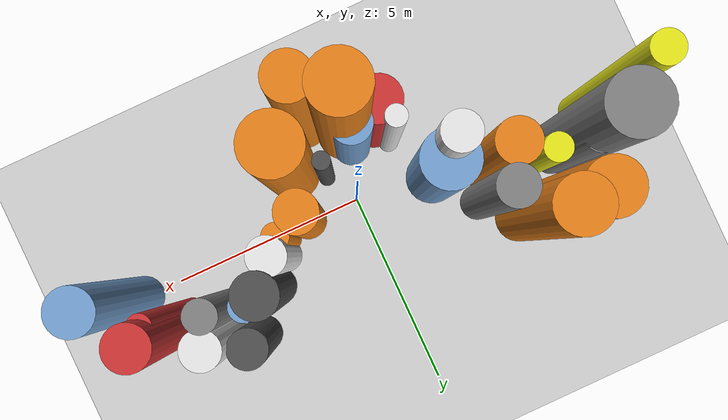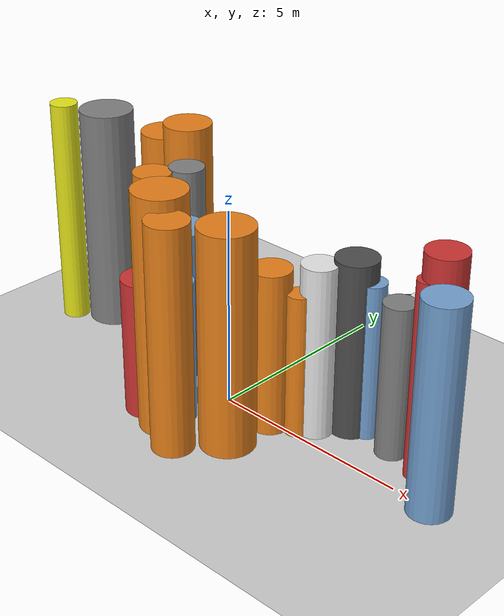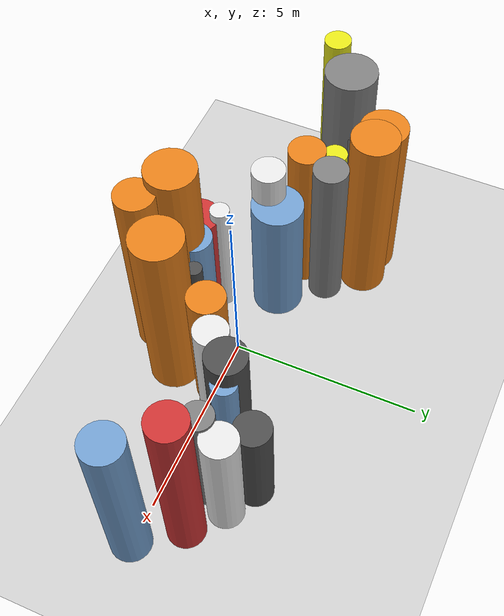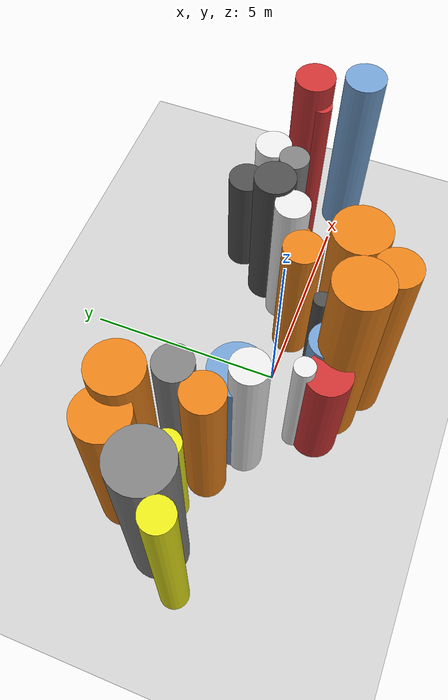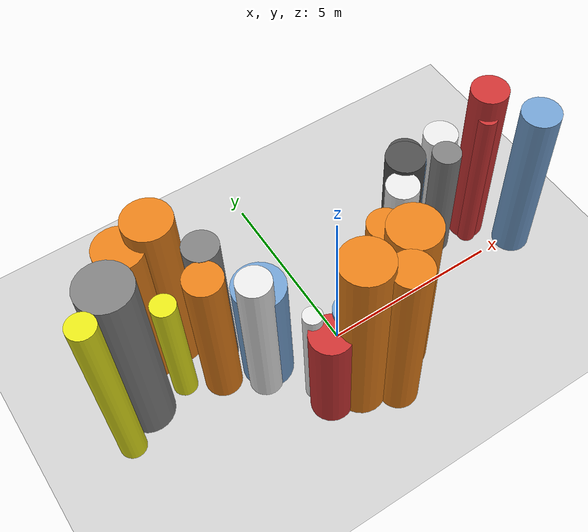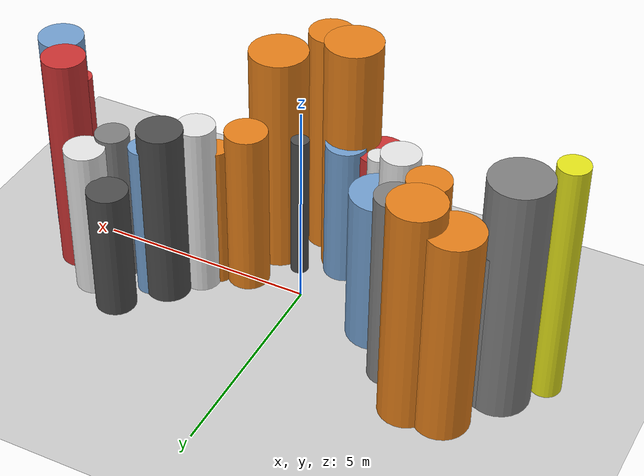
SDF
<?xml version='1.0'?>
<sdf version='1.6'>
  <world name='routeA_rl_v1__dense_recovery__rl_train__s_turn_multi_obstacle__000043'>
    <!-- Sun light -->
    <light name='sun' type='directional'>
      <cast_shadows>1</cast_shadows>
      <pose>0 0 10 0 0 0</pose>
      <diffuse>0.8 0.8 0.8 1</diffuse>
      <specular>0.2 0.2 0.2 1</specular>
      <attenuation>
        <range>1000</range>
        <constant>0.9</constant>
        <linear>0.01</linear>
        <quadratic>0.001</quadratic>
      </attenuation>
      <direction>-0.5 0.1 -0.9</direction>
    </light>

    <!-- Ground plane -->
    <model name='ground_plane'>
      <static>1</static>
      <link name='link'>
        <collision name='collision'>
          <geometry>
            <plane>
              <normal>0 0 1</normal>
              <size>100 100</size>
            </plane>
          </geometry>
          <surface>
            <contact>
              <collide_bitmask>65535</collide_bitmask>
              <ode/>
            </contact>
            <friction>
              <ode>
                <mu>100</mu>
                <mu2>50</mu2>
              </ode>
              <torsional><ode/></torsional>
            </friction>
            <bounce/>
          </surface>
          <max_contacts>10</max_contacts>
        </collision>
        <visual name='visual'>
          <cast_shadows>0</cast_shadows>
          <geometry>
            <plane>
              <normal>0 0 1</normal>
              <size>100 100</size>
            </plane>
          </geometry>
          <material>
            <script>
              <uri>file://media/materials/scripts/gazebo.material</uri>
              <n>Gazebo/Grey</n>
            </script>
          </material>
        </visual>
      </link>
    </model>

    <!-- Environment -->
    <magnetic_field>6e-06 2.3e-05 -4.2e-05</magnetic_field>
    <atmosphere type='adiabatic'/>
    <physics name='default_physics' default='0' type='ode'>
      <gravity>0 0 -9.8</gravity>
      <max_step_size>0.004</max_step_size>
      <real_time_factor>1</real_time_factor>
      <real_time_update_rate>250</real_time_update_rate>
    </physics>
    <scene>
      <ambient>0.4 0.4 0.4 1</ambient>
      <background>0.7 0.7 0.7 1</background>
      <shadows>1</shadows>
    </scene>
    <wind/>
    <spherical_coordinates>
      <surface_model>EARTH_WGS84</surface_model>
      <latitude_deg>0</latitude_deg>
      <longitude_deg>0</longitude_deg>
      <elevation>0</elevation>
      <heading_deg>0</heading_deg>
    </spherical_coordinates>

    <!-- ============ OBSTACLES (28) ============ -->
    <model name='s_turn_obs_0'>
      <static>1</static>
      <link name='link'>
        <visual name='visual'>
          <geometry>
            <cylinder>
              <radius>0.3445</radius>
              <length>5.9297</length>
            </cylinder>
          </geometry>
          <material>
            <script>
              <n>Gazebo/Yellow</n>
              <uri>file://media/materials/scripts/gazebo.material</uri>
            </script>
            <ambient>0.9 0.9 0.1 1</ambient>
          </material>
        </visual>
        <collision name='collision'>
          <geometry>
            <cylinder>
              <radius>0.3445</radius>
              <length>5.9297</length>
            </cylinder>
          </geometry>
          <max_contacts>10</max_contacts>
          <surface>
            <contact><ode/></contact>
            <bounce/>
            <friction>
              <ode><mu>1</mu><mu2>1</mu2></ode>
              <torsional><ode/></torsional>
            </friction>
          </surface>
        </collision>
      </link>
      <pose>-6.0000 0.2344 2.9648 0 0 0.0000</pose>
    </model>

    <model name='s_turn_obs_1'>
      <static>1</static>
      <link name='link'>
        <visual name='visual'>
          <geometry>
            <cylinder>
              <radius>0.6779</radius>
              <length>5.7943</length>
            </cylinder>
          </geometry>
          <material>
            <script>
              <n>Gazebo/Grey</n>
              <uri>file://media/materials/scripts/gazebo.material</uri>
            </script>
            <ambient>0.5 0.5 0.5 1</ambient>
          </material>
        </visual>
        <collision name='collision'>
          <geometry>
            <cylinder>
              <radius>0.6779</radius>
              <length>5.7943</length>
            </cylinder>
          </geometry>
          <max_contacts>10</max_contacts>
          <surface>
            <contact><ode/></contact>
            <bounce/>
            <friction>
              <ode><mu>1</mu><mu2>1</mu2></ode>
              <torsional><ode/></torsional>
            </friction>
          </surface>
        </collision>
      </link>
      <pose>-5.2000 0.9212 2.8972 0 0 0.0000</pose>
    </model>

    <model name='s_turn_obs_2'>
      <static>1</static>
      <link name='link'>
        <visual name='visual'>
          <geometry>
            <cylinder>
              <radius>0.6239</radius>
              <length>5.0872</length>
            </cylinder>
          </geometry>
          <material>
            <script>
              <n>Gazebo/Orange</n>
              <uri>file://media/materials/scripts/gazebo.material</uri>
            </script>
            <ambient>0.9 0.5 0.1 1</ambient>
          </material>
        </visual>
        <collision name='collision'>
          <geometry>
            <cylinder>
              <radius>0.6239</radius>
              <length>5.0872</length>
            </cylinder>
          </geometry>
          <max_contacts>10</max_contacts>
          <surface>
            <contact><ode/></contact>
            <bounce/>
            <friction>
              <ode><mu>1</mu><mu2>1</mu2></ode>
              <torsional><ode/></torsional>
            </friction>
          </surface>
        </collision>
      </link>
      <pose>-4.4000 2.1509 2.5436 0 0 0.0000</pose>
    </model>

    <model name='s_turn_obs_3'>
      <static>1</static>
      <link name='link'>
        <visual name='visual'>
          <geometry>
            <cylinder>
              <radius>0.6157</radius>
              <length>5.5144</length>
            </cylinder>
          </geometry>
          <material>
            <script>
              <n>Gazebo/Orange</n>
              <uri>file://media/materials/scripts/gazebo.material</uri>
            </script>
            <ambient>0.9 0.5 0.1 1</ambient>
          </material>
        </visual>
        <collision name='collision'>
          <geometry>
            <cylinder>
              <radius>0.6157</radius>
              <length>5.5144</length>
            </cylinder>
          </geometry>
          <max_contacts>10</max_contacts>
          <surface>
            <contact><ode/></contact>
            <bounce/>
            <friction>
              <ode><mu>1</mu><mu2>1</mu2></ode>
              <torsional><ode/></torsional>
            </friction>
          </surface>
        </collision>
      </link>
      <pose>-3.6000 2.1815 2.7572 0 0 0.0000</pose>
    </model>

    <model name='s_turn_obs_4'>
      <static>1</static>
      <link name='link'>
        <visual name='visual'>
          <geometry>
            <cylinder>
              <radius>0.4526</radius>
              <length>4.8275</length>
            </cylinder>
          </geometry>
          <material>
            <script>
              <n>Gazebo/Grey</n>
              <uri>file://media/materials/scripts/gazebo.material</uri>
            </script>
            <ambient>0.5 0.5 0.5 1</ambient>
          </material>
        </visual>
        <collision name='collision'>
          <geometry>
            <cylinder>
              <radius>0.4526</radius>
              <length>4.8275</length>
            </cylinder>
          </geometry>
          <max_contacts>10</max_contacts>
          <surface>
            <contact><ode/></contact>
            <bounce/>
            <friction>
              <ode><mu>1</mu><mu2>1</mu2></ode>
              <torsional><ode/></torsional>
            </friction>
          </surface>
        </collision>
      </link>
      <pose>-2.8000 1.3689 2.4138 0 0 0.0000</pose>
    </model>

    <model name='s_turn_obs_5'>
      <static>1</static>
      <link name='link'>
        <visual name='visual'>
          <geometry>
            <cylinder>
              <radius>0.6723</radius>
              <length>3.8635</length>
            </cylinder>
          </geometry>
          <material>
            <script>
              <n>Gazebo/Blue</n>
              <uri>file://media/materials/scripts/gazebo.material</uri>
            </script>
            <ambient>0.447 0.624 0.812 1</ambient>
          </material>
        </visual>
        <collision name='collision'>
          <geometry>
            <cylinder>
              <radius>0.6723</radius>
              <length>3.8635</length>
            </cylinder>
          </geometry>
          <max_contacts>10</max_contacts>
          <surface>
            <contact><ode/></contact>
            <bounce/>
            <friction>
              <ode><mu>1</mu><mu2>1</mu2></ode>
              <torsional><ode/></torsional>
            </friction>
          </surface>
        </collision>
      </link>
      <pose>-2.0000 0.2894 1.9318 0 0 0.0000</pose>
    </model>

    <model name='s_turn_obs_6'>
      <static>1</static>
      <link name='link'>
        <visual name='visual'>
          <geometry>
            <cylinder>
              <radius>0.5484</radius>
              <length>3.4766</length>
            </cylinder>
          </geometry>
          <material>
            <script>
              <n>Gazebo/Red</n>
              <uri>file://media/materials/scripts/gazebo.material</uri>
            </script>
            <ambient>0.8 0.2 0.2 1</ambient>
          </material>
        </visual>
        <collision name='collision'>
          <geometry>
            <cylinder>
              <radius>0.5484</radius>
              <length>3.4766</length>
            </cylinder>
          </geometry>
          <max_contacts>10</max_contacts>
          <surface>
            <contact><ode/></contact>
            <bounce/>
            <friction>
              <ode><mu>1</mu><mu2>1</mu2></ode>
              <torsional><ode/></torsional>
            </friction>
          </surface>
        </collision>
      </link>
      <pose>-1.2000 -1.5291 1.7383 0 0 0.0000</pose>
    </model>

    <model name='s_turn_obs_7'>
      <static>1</static>
      <link name='link'>
        <visual name='visual'>
          <geometry>
            <cylinder>
              <radius>0.6517</radius>
              <length>5.9690</length>
            </cylinder>
          </geometry>
          <material>
            <script>
              <n>Gazebo/Orange</n>
              <uri>file://media/materials/scripts/gazebo.material</uri>
            </script>
            <ambient>0.9 0.5 0.1 1</ambient>
          </material>
        </visual>
        <collision name='collision'>
          <geometry>
            <cylinder>
              <radius>0.6517</radius>
              <length>5.9690</length>
            </cylinder>
          </geometry>
          <max_contacts>10</max_contacts>
          <surface>
            <contact><ode/></contact>
            <bounce/>
            <friction>
              <ode><mu>1</mu><mu2>1</mu2></ode>
              <torsional><ode/></torsional>
            </friction>
          </surface>
        </collision>
      </link>
      <pose>-0.4000 -1.6844 2.9845 0 0 0.0000</pose>
    </model>

    <model name='s_turn_obs_8'>
      <static>1</static>
      <link name='link'>
        <visual name='visual'>
          <geometry>
            <cylinder>
              <radius>0.5121</radius>
              <length>5.6873</length>
            </cylinder>
          </geometry>
          <material>
            <script>
              <n>Gazebo/Orange</n>
              <uri>file://media/materials/scripts/gazebo.material</uri>
            </script>
            <ambient>0.9 0.5 0.1 1</ambient>
          </material>
        </visual>
        <collision name='collision'>
          <geometry>
            <cylinder>
              <radius>0.5121</radius>
              <length>5.6873</length>
            </cylinder>
          </geometry>
          <max_contacts>10</max_contacts>
          <surface>
            <contact><ode/></contact>
            <bounce/>
            <friction>
              <ode><mu>1</mu><mu2>1</mu2></ode>
              <torsional><ode/></torsional>
            </friction>
          </surface>
        </collision>
      </link>
      <pose>0.4000 -2.2289 2.8437 0 0 0.0000</pose>
    </model>

    <model name='s_turn_obs_9'>
      <static>1</static>
      <link name='link'>
        <visual name='visual'>
          <geometry>
            <cylinder>
              <radius>0.6656</radius>
              <length>5.5032</length>
            </cylinder>
          </geometry>
          <material>
            <script>
              <n>Gazebo/Orange</n>
              <uri>file://media/materials/scripts/gazebo.material</uri>
            </script>
            <ambient>0.9 0.5 0.1 1</ambient>
          </material>
        </visual>
        <collision name='collision'>
          <geometry>
            <cylinder>
              <radius>0.6656</radius>
              <length>5.5032</length>
            </cylinder>
          </geometry>
          <max_contacts>10</max_contacts>
          <surface>
            <contact><ode/></contact>
            <bounce/>
            <friction>
              <ode><mu>1</mu><mu2>1</mu2></ode>
              <torsional><ode/></torsional>
            </friction>
          </surface>
        </collision>
      </link>
      <pose>1.2000 -1.2694 2.7516 0 0 0.0000</pose>
    </model>

    <model name='s_turn_obs_10'>
      <static>1</static>
      <link name='link'>
        <visual name='visual'>
          <geometry>
            <cylinder>
              <radius>0.3065</radius>
              <length>3.6169</length>
            </cylinder>
          </geometry>
          <material>
            <script>
              <n>Gazebo/Orange</n>
              <uri>file://media/materials/scripts/gazebo.material</uri>
            </script>
            <ambient>0.9 0.5 0.1 1</ambient>
          </material>
        </visual>
        <collision name='collision'>
          <geometry>
            <cylinder>
              <radius>0.3065</radius>
              <length>3.6169</length>
            </cylinder>
          </geometry>
          <max_contacts>10</max_contacts>
          <surface>
            <contact><ode/></contact>
            <bounce/>
            <friction>
              <ode><mu>1</mu><mu2>1</mu2></ode>
              <torsional><ode/></torsional>
            </friction>
          </surface>
        </collision>
      </link>
      <pose>2.0000 0.1983 1.8084 0 0 0.0000</pose>
    </model>

    <model name='s_turn_obs_11'>
      <static>1</static>
      <link name='link'>
        <visual name='visual'>
          <geometry>
            <cylinder>
              <radius>0.5136</radius>
              <length>4.4365</length>
            </cylinder>
          </geometry>
          <material>
            <script>
              <n>Gazebo/DarkGrey</n>
              <uri>file://media/materials/scripts/gazebo.material</uri>
            </script>
            <ambient>0.3 0.3 0.3 1</ambient>
          </material>
        </visual>
        <collision name='collision'>
          <geometry>
            <cylinder>
              <radius>0.5136</radius>
              <length>4.4365</length>
            </cylinder>
          </geometry>
          <max_contacts>10</max_contacts>
          <surface>
            <contact><ode/></contact>
            <bounce/>
            <friction>
              <ode><mu>1</mu><mu2>1</mu2></ode>
              <torsional><ode/></torsional>
            </friction>
          </surface>
        </collision>
      </link>
      <pose>2.8000 1.1518 2.2182 0 0 0.0000</pose>
    </model>

    <model name='s_turn_obs_12'>
      <static>1</static>
      <link name='link'>
        <visual name='visual'>
          <geometry>
            <cylinder>
              <radius>0.4659</radius>
              <length>3.1997</length>
            </cylinder>
          </geometry>
          <material>
            <script>
              <n>Gazebo/DarkGrey</n>
              <uri>file://media/materials/scripts/gazebo.material</uri>
            </script>
            <ambient>0.3 0.3 0.3 1</ambient>
          </material>
        </visual>
        <collision name='collision'>
          <geometry>
            <cylinder>
              <radius>0.4659</radius>
              <length>3.1997</length>
            </cylinder>
          </geometry>
          <max_contacts>10</max_contacts>
          <surface>
            <contact><ode/></contact>
            <bounce/>
            <friction>
              <ode><mu>1</mu><mu2>1</mu2></ode>
              <torsional><ode/></torsional>
            </friction>
          </surface>
        </collision>
      </link>
      <pose>3.6000 2.1245 1.5998 0 0 0.0000</pose>
    </model>

    <model name='s_turn_obs_13'>
      <static>1</static>
      <link name='link'>
        <visual name='visual'>
          <geometry>
            <cylinder>
              <radius>0.4628</radius>
              <length>3.7710</length>
            </cylinder>
          </geometry>
          <material>
            <script>
              <n>Gazebo/White</n>
              <uri>file://media/materials/scripts/gazebo.material</uri>
            </script>
            <ambient>0.9 0.9 0.9 1</ambient>
          </material>
        </visual>
        <collision name='collision'>
          <geometry>
            <cylinder>
              <radius>0.4628</radius>
              <length>3.7710</length>
            </cylinder>
          </geometry>
          <max_contacts>10</max_contacts>
          <surface>
            <contact><ode/></contact>
            <bounce/>
            <friction>
              <ode><mu>1</mu><mu2>1</mu2></ode>
              <torsional><ode/></torsional>
            </friction>
          </surface>
        </collision>
      </link>
      <pose>4.4000 1.7071 1.8855 0 0 0.0000</pose>
    </model>

    <model name='s_turn_obs_14'>
      <static>1</static>
      <link name='link'>
        <visual name='visual'>
          <geometry>
            <cylinder>
              <radius>0.4887</radius>
              <length>5.4947</length>
            </cylinder>
          </geometry>
          <material>
            <script>
              <n>Gazebo/Red</n>
              <uri>file://media/materials/scripts/gazebo.material</uri>
            </script>
            <ambient>0.8 0.2 0.2 1</ambient>
          </material>
        </visual>
        <collision name='collision'>
          <geometry>
            <cylinder>
              <radius>0.4887</radius>
              <length>5.4947</length>
            </cylinder>
          </geometry>
          <max_contacts>10</max_contacts>
          <surface>
            <contact><ode/></contact>
            <bounce/>
            <friction>
              <ode><mu>1</mu><mu2>1</mu2></ode>
              <torsional><ode/></torsional>
            </friction>
          </surface>
        </collision>
      </link>
      <pose>5.2000 1.0331 2.7474 0 0 0.0000</pose>
    </model>

    <model name='s_turn_obs_15'>
      <static>1</static>
      <link name='link'>
        <visual name='visual'>
          <geometry>
            <cylinder>
              <radius>0.5183</radius>
              <length>5.1624</length>
            </cylinder>
          </geometry>
          <material>
            <script>
              <n>Gazebo/Blue</n>
              <uri>file://media/materials/scripts/gazebo.material</uri>
            </script>
            <ambient>0.447 0.624 0.812 1</ambient>
          </material>
        </visual>
        <collision name='collision'>
          <geometry>
            <cylinder>
              <radius>0.5183</radius>
              <length>5.1624</length>
            </cylinder>
          </geometry>
          <max_contacts>10</max_contacts>
          <surface>
            <contact><ode/></contact>
            <bounce/>
            <friction>
              <ode><mu>1</mu><mu2>1</mu2></ode>
              <torsional><ode/></torsional>
            </friction>
          </surface>
        </collision>
      </link>
      <pose>6.0000 -0.0430 2.5812 0 0 0.0000</pose>
    </model>

    <model name='s_turn_obs2_0'>
      <static>1</static>
      <link name='link'>
        <visual name='visual'>
          <geometry>
            <cylinder>
              <radius>0.4356</radius>
              <length>4.0725</length>
            </cylinder>
          </geometry>
          <material>
            <script>
              <n>Gazebo/Grey</n>
              <uri>file://media/materials/scripts/gazebo.material</uri>
            </script>
            <ambient>0.5 0.5 0.5 1</ambient>
          </material>
        </visual>
        <collision name='collision'>
          <geometry>
            <cylinder>
              <radius>0.4356</radius>
              <length>4.0725</length>
            </cylinder>
          </geometry>
          <max_contacts>10</max_contacts>
          <surface>
            <contact><ode/></contact>
            <bounce/>
            <friction>
              <ode><mu>1</mu><mu2>1</mu2></ode>
              <torsional><ode/></torsional>
            </friction>
          </surface>
        </collision>
      </link>
      <pose>-5.0000 1.1088 2.0362 0 0 0.0000</pose>
    </model>

    <model name='s_turn_obs2_1'>
      <static>1</static>
      <link name='link'>
        <visual name='visual'>
          <geometry>
            <cylinder>
              <radius>0.3217</radius>
              <length>3.9417</length>
            </cylinder>
          </geometry>
          <material>
            <script>
              <n>Gazebo/Yellow</n>
              <uri>file://media/materials/scripts/gazebo.material</uri>
            </script>
            <ambient>0.9 0.9 0.1 1</ambient>
          </material>
        </visual>
        <collision name='collision'>
          <geometry>
            <cylinder>
              <radius>0.3217</radius>
              <length>3.9417</length>
            </cylinder>
          </geometry>
          <max_contacts>10</max_contacts>
          <surface>
            <contact><ode/></contact>
            <bounce/>
            <friction>
              <ode><mu>1</mu><mu2>1</mu2></ode>
              <torsional><ode/></torsional>
            </friction>
          </surface>
        </collision>
      </link>
      <pose>-4.0909 1.0092 1.9709 0 0 0.0000</pose>
    </model>

    <model name='s_turn_obs2_2'>
      <static>1</static>
      <link name='link'>
        <visual name='visual'>
          <geometry>
            <cylinder>
              <radius>0.4860</radius>
              <length>4.8119</length>
            </cylinder>
          </geometry>
          <material>
            <script>
              <n>Gazebo/Orange</n>
              <uri>file://media/materials/scripts/gazebo.material</uri>
            </script>
            <ambient>0.9 0.5 0.1 1</ambient>
          </material>
        </visual>
        <collision name='collision'>
          <geometry>
            <cylinder>
              <radius>0.4860</radius>
              <length>4.8119</length>
            </cylinder>
          </geometry>
          <max_contacts>10</max_contacts>
          <surface>
            <contact><ode/></contact>
            <bounce/>
            <friction>
              <ode><mu>1</mu><mu2>1</mu2></ode>
              <torsional><ode/></torsional>
            </friction>
          </surface>
        </collision>
      </link>
      <pose>-3.1818 0.5814 2.4060 0 0 0.0000</pose>
    </model>

    <model name='s_turn_obs2_3'>
      <static>1</static>
      <link name='link'>
        <visual name='visual'>
          <geometry>
            <cylinder>
              <radius>0.4374</radius>
              <length>4.7338</length>
            </cylinder>
          </geometry>
          <material>
            <script>
              <n>Gazebo/White</n>
              <uri>file://media/materials/scripts/gazebo.material</uri>
            </script>
            <ambient>0.9 0.9 0.9 1</ambient>
          </material>
        </visual>
        <collision name='collision'>
          <geometry>
            <cylinder>
              <radius>0.4374</radius>
              <length>4.7338</length>
            </cylinder>
          </geometry>
          <max_contacts>10</max_contacts>
          <surface>
            <contact><ode/></contact>
            <bounce/>
            <friction>
              <ode><mu>1</mu><mu2>1</mu2></ode>
              <torsional><ode/></torsional>
            </friction>
          </surface>
        </collision>
      </link>
      <pose>-2.2727 -0.0612 2.3669 0 0 0.0000</pose>
    </model>

    <model name='s_turn_obs2_4'>
      <static>1</static>
      <link name='link'>
        <visual name='visual'>
          <geometry>
            <cylinder>
              <radius>0.2529</radius>
              <length>3.7472</length>
            </cylinder>
          </geometry>
          <material>
            <script>
              <n>Gazebo/White</n>
              <uri>file://media/materials/scripts/gazebo.material</uri>
            </script>
            <ambient>0.9 0.9 0.9 1</ambient>
          </material>
        </visual>
        <collision name='collision'>
          <geometry>
            <cylinder>
              <radius>0.2529</radius>
              <length>3.7472</length>
            </cylinder>
          </geometry>
          <max_contacts>10</max_contacts>
          <surface>
            <contact><ode/></contact>
            <bounce/>
            <friction>
              <ode><mu>1</mu><mu2>1</mu2></ode>
              <torsional><ode/></torsional>
            </friction>
          </surface>
        </collision>
      </link>
      <pose>-1.3636 -1.0100 1.8736 0 0 0.0000</pose>
    </model>

    <model name='s_turn_obs2_5'>
      <static>1</static>
      <link name='link'>
        <visual name='visual'>
          <geometry>
            <cylinder>
              <radius>0.4790</radius>
              <length>3.5806</length>
            </cylinder>
          </geometry>
          <material>
            <script>
              <n>Gazebo/Blue</n>
              <uri>file://media/materials/scripts/gazebo.material</uri>
            </script>
            <ambient>0.447 0.624 0.812 1</ambient>
          </material>
        </visual>
        <collision name='collision'>
          <geometry>
            <cylinder>
              <radius>0.4790</radius>
              <length>3.5806</length>
            </cylinder>
          </geometry>
          <max_contacts>10</max_contacts>
          <surface>
            <contact><ode/></contact>
            <bounce/>
            <friction>
              <ode><mu>1</mu><mu2>1</mu2></ode>
              <torsional><ode/></torsional>
            </friction>
          </surface>
        </collision>
      </link>
      <pose>-0.4545 -1.3018 1.7903 0 0 0.0000</pose>
    </model>

    <model name='s_turn_obs2_6'>
      <static>1</static>
      <link name='link'>
        <visual name='visual'>
          <geometry>
            <cylinder>
              <radius>0.2083</radius>
              <length>3.6623</length>
            </cylinder>
          </geometry>
          <material>
            <script>
              <n>Gazebo/DarkGrey</n>
              <uri>file://media/materials/scripts/gazebo.material</uri>
            </script>
            <ambient>0.3 0.3 0.3 1</ambient>
          </material>
        </visual>
        <collision name='collision'>
          <geometry>
            <cylinder>
              <radius>0.2083</radius>
              <length>3.6623</length>
            </cylinder>
          </geometry>
          <max_contacts>10</max_contacts>
          <surface>
            <contact><ode/></contact>
            <bounce/>
            <friction>
              <ode><mu>1</mu><mu2>1</mu2></ode>
              <torsional><ode/></torsional>
            </friction>
          </surface>
        </collision>
      </link>
      <pose>0.4545 -0.8328 1.8311 0 0 0.0000</pose>
    </model>

    <model name='s_turn_obs2_7'>
      <static>1</static>
      <link name='link'>
        <visual name='visual'>
          <geometry>
            <cylinder>
              <radius>0.4853</radius>
              <length>4.1022</length>
            </cylinder>
          </geometry>
          <material>
            <script>
              <n>Gazebo/Orange</n>
              <uri>file://media/materials/scripts/gazebo.material</uri>
            </script>
            <ambient>0.9 0.5 0.1 1</ambient>
          </material>
        </visual>
        <collision name='collision'>
          <geometry>
            <cylinder>
              <radius>0.4853</radius>
              <length>4.1022</length>
            </cylinder>
          </geometry>
          <max_contacts>10</max_contacts>
          <surface>
            <contact><ode/></contact>
            <bounce/>
            <friction>
              <ode><mu>1</mu><mu2>1</mu2></ode>
              <torsional><ode/></torsional>
            </friction>
          </surface>
        </collision>
      </link>
      <pose>1.3636 -0.0453 2.0511 0 0 0.0000</pose>
    </model>

    <model name='s_turn_obs2_8'>
      <static>1</static>
      <link name='link'>
        <visual name='visual'>
          <geometry>
            <cylinder>
              <radius>0.4329</radius>
              <length>4.3304</length>
            </cylinder>
          </geometry>
          <material>
            <script>
              <n>Gazebo/White</n>
              <uri>file://media/materials/scripts/gazebo.material</uri>
            </script>
            <ambient>0.9 0.9 0.9 1</ambient>
          </material>
        </visual>
        <collision name='collision'>
          <geometry>
            <cylinder>
              <radius>0.4329</radius>
              <length>4.3304</length>
            </cylinder>
          </geometry>
          <max_contacts>10</max_contacts>
          <surface>
            <contact><ode/></contact>
            <bounce/>
            <friction>
              <ode><mu>1</mu><mu2>1</mu2></ode>
              <torsional><ode/></torsional>
            </friction>
          </surface>
        </collision>
      </link>
      <pose>2.2727 0.5273 2.1652 0 0 0.0000</pose>
    </model>

    <model name='s_turn_obs2_9'>
      <static>1</static>
      <link name='link'>
        <visual name='visual'>
          <geometry>
            <cylinder>
              <radius>0.3263</radius>
              <length>3.9333</length>
            </cylinder>
          </geometry>
          <material>
            <script>
              <n>Gazebo/Blue</n>
              <uri>file://media/materials/scripts/gazebo.material</uri>
            </script>
            <ambient>0.447 0.624 0.812 1</ambient>
          </material>
        </visual>
        <collision name='collision'>
          <geometry>
            <cylinder>
              <radius>0.3263</radius>
              <length>3.9333</length>
            </cylinder>
          </geometry>
          <max_contacts>10</max_contacts>
          <surface>
            <contact><ode/></contact>
            <bounce/>
            <friction>
              <ode><mu>1</mu><mu2>1</mu2></ode>
              <torsional><ode/></torsional>
            </friction>
          </surface>
        </collision>
      </link>
      <pose>3.1818 1.2599 1.9667 0 0 0.0000</pose>
    </model>

    <model name='s_turn_obs2_10'>
      <static>1</static>
      <link name='link'>
        <visual name='visual'>
          <geometry>
            <cylinder>
              <radius>0.3872</radius>
              <length>3.8536</length>
            </cylinder>
          </geometry>
          <material>
            <script>
              <n>Gazebo/Grey</n>
              <uri>file://media/materials/scripts/gazebo.material</uri>
            </script>
            <ambient>0.5 0.5 0.5 1</ambient>
          </material>
        </visual>
        <collision name='collision'>
          <geometry>
            <cylinder>
              <radius>0.3872</radius>
              <length>3.8536</length>
            </cylinder>
          </geometry>
          <max_contacts>10</max_contacts>
          <surface>
            <contact><ode/></contact>
            <bounce/>
            <friction>
              <ode><mu>1</mu><mu2>1</mu2></ode>
              <torsional><ode/></torsional>
            </friction>
          </surface>
        </collision>
      </link>
      <pose>4.0909 1.0582 1.9268 0 0 0.0000</pose>
    </model>

    <model name='s_turn_obs2_11'>
      <static>1</static>
      <link name='link'>
        <visual name='visual'>
          <geometry>
            <cylinder>
              <radius>0.2553</radius>
              <length>4.8735</length>
            </cylinder>
          </geometry>
          <material>
            <script>
              <n>Gazebo/Red</n>
              <uri>file://media/materials/scripts/gazebo.material</uri>
            </script>
            <ambient>0.8 0.2 0.2 1</ambient>
          </material>
        </visual>
        <collision name='collision'>
          <geometry>
            <cylinder>
              <radius>0.2553</radius>
              <length>4.8735</length>
            </cylinder>
          </geometry>
          <max_contacts>10</max_contacts>
          <surface>
            <contact><ode/></contact>
            <bounce/>
            <friction>
              <ode><mu>1</mu><mu2>1</mu2></ode>
              <torsional><ode/></torsional>
            </friction>
          </surface>
        </collision>
      </link>
      <pose>5.0000 0.7419 2.4368 0 0 0.0000</pose>
    </model>

    <!-- GUI camera -->
    <gui fullscreen='0'>
      <camera name='user_camera'>
        <pose>-15 0 18 0 0.85 0.15</pose>
        <view_controller>orbit</view_controller>
        <projection_type>perspective</projection_type>
      </camera>
    </gui>
  </world>
</sdf>
